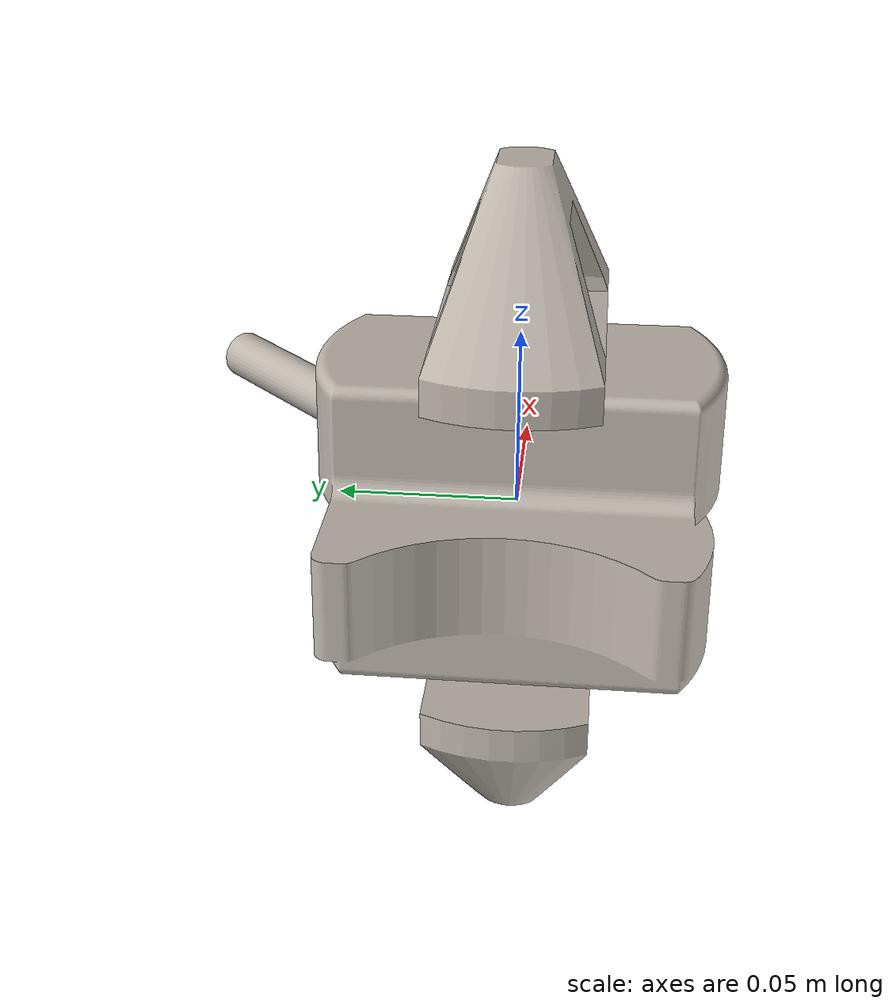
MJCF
<mujoco model="twist_lock">
  <asset>
    <mesh file="../meshes/custom/twist_lock_casing.stl" name="twist_lock_casing_mesh"/>
    <mesh file="../meshes/custom/twist_lock_lock.stl" name="twist_lock_lock_mesh"/>
    <texture file="../../textures/metal.png" type="cube" name="metal" />
    <material name="MatMetal" texture="metal" specular="1" shininess="0.3" />
  </asset>
    <worldbody>
      <body>
        <body name="object">
          <joint name="z_slide" type="slide" pos="0 0 0" axis="0 0 1" range="0 1" damping="0" frictionloss="0.1" limited="true"/>
          <body name="casing">
              <inertial pos="0 0 0" mass="1.0" diaginertia="1 1 0.001" />
              <geom pos="0 0 0" mesh="twist_lock_casing_mesh" type="mesh" conaffinity="0" contype="0" group="1" material="MatMetal" name="casing_vis"/>
              <geom pos="0 0 0" mesh="twist_lock_casing_mesh" type="mesh" solimp="0.998 0.998 0.001" solref="0.02 1" conaffinity="0" contype="1" density="100" friction="0.95 0.3 0.1" group="0" condim="4" name="casing_col"/>
          </body>
          <body name="lock" pos="0 0 0">
              <inertial pos="0 0 0" mass="1.0" diaginertia="1 1 0.001" />
              <joint name="lock_joint" pos="0 0 0" axis="0 0 1" range="0 1.57" damping="0" frictionloss="0.1" limited="true"/>
              <geom pos="0 0 0" mesh="twist_lock_lock_mesh" type="mesh" conaffinity="0" contype="0" group="1" material="MatMetal" name="lock_vis"/>
              <geom pos="0 0 0" mesh="twist_lock_lock_mesh" type="mesh" solimp="0.998 0.998 0.001" solref="0.02 1" conaffinity="0" contype="1" density="100" friction="0.95 0.3 0.1" group="0" condim="4" name="lock_col"/>
              <site name="handle" pos="0.07 0.07 0" size="0.01 0.01 0.01" rgba="0 0 1 0" group="1" type="sphere" />
          </body>
        </body>
        <site name="bottom_site" pos="0 0 0" rgba="0 0 0 0" size="0.005"/>
        <site name="top_site" pos="0 0 0" rgba="0 0 0 0" size="0.005"/>
        <site name="horizontal_radius_site" pos="0 0 0" rgba="0 0 0 0" size="0.1"/>
      </body>
    </worldbody>
</mujoco>
